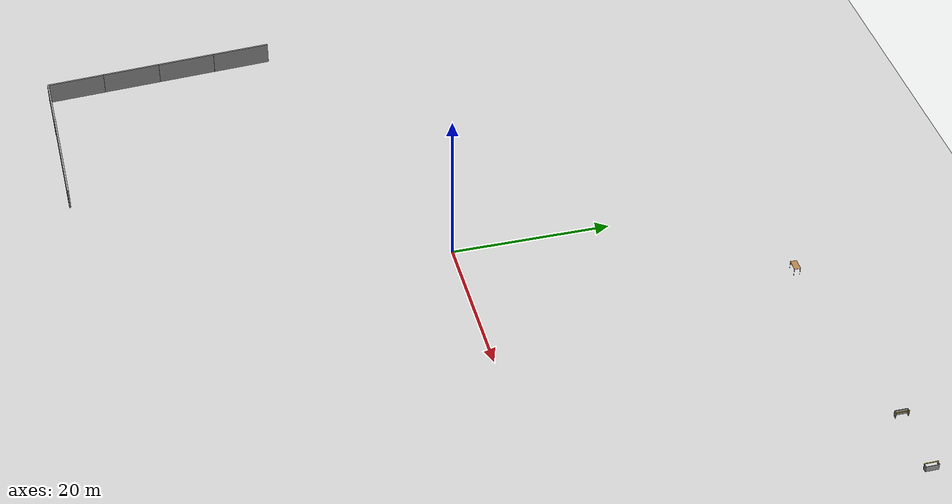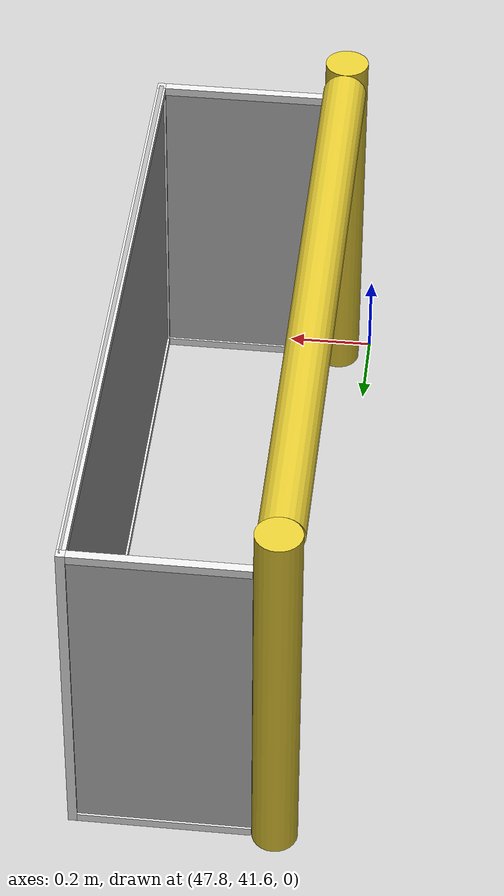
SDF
<sdf version="1.7">
 <world name="default">
  <light name="sun" type="directional">
   <pose>0 0 10 0 -0 0</pose>
   <diffuse>0.8 0.8 0.8 1</diffuse>
   <specular>0.2 0.2 0.2 1</specular>
   <attenuation>
    <range>1000</range>
    <constant>0.9</constant>
    <linear>0.01</linear>
    <quadratic>0.001</quadratic>
   </attenuation>
   <direction>-0.5 0.1 -0.9</direction>
   <spot><inner_angle>0</inner_angle><outer_angle>0</outer_angle><falloff>0</falloff></spot>
  </light>
  <gravity>0 0 -9.8</gravity>
  <magnetic_field>6e-06 2.3e-05 -4.2e-05</magnetic_field>
  <atmosphere type="adiabatic"/>
  <physics type="ode">
   <max_step_size>0.001</max_step_size>
   <real_time_factor>1</real_time_factor>
   <real_time_update_rate>1000</real_time_update_rate>
  </physics>
  <scene><ambient>0.4 0.4 0.4 1</ambient><background>0.7 0.7 0.7 1</background><shadows>1</shadows></scene>
  <spherical_coordinates>
   <surface_model>EARTH_WGS84</surface_model>
   <latitude_deg>0</latitude_deg>
   <longitude_deg>0</longitude_deg>
   <elevation>0</elevation>
   <heading_deg>0</heading_deg>
  </spherical_coordinates>
  <model name="grey_wall">
   <static>1</static>
   <link name="link">
    <pose>0 0 1.4 0 -0 0</pose>
    <collision name="collision"><geometry><box><size>7.5 0.2 2.8</size></box></geometry></collision>
    <visual name="visual">
     <cast_shadows>0</cast_shadows>
     <geometry><box><size>7.5 0.2 2.8</size></box></geometry>
     <material>
      <script>
       <uri>model://grey_wall/materials/scripts</uri>
       <uri>model://grey_wall/materials/textures</uri>
       <name>vrc/grey_wall</name>
      </script>
     </material>
    </visual>
   </link>
   <pose>-31.0615 -44.6284 0 0 -0 0</pose>
  </model>
  <model name="RoboCup 2014 SPL Goal">
   <static>1</static>
   <link name="left_post">
    <pose>0 0.8 0.45 0 -0 0</pose>
    <collision name="collision">
     <geometry><cylinder><radius>0.05</radius><length>0.9</length></cylinder></geometry>
    </collision>
    <visual name="visual">
     <geometry><cylinder><radius>0.05</radius><length>0.9</length></cylinder></geometry>
     <material>
      <script><uri>file://media/materials/scripts/gazebo.material</uri><name>Gazebo/ZincYellow</name></script>
     </material>
    </visual>
   </link>
   <link name="left_support_horiz_lower">
    <pose>0.24 0.8 0.01 0 -0 0</pose>
    <collision name="collision"><geometry><box><size>0.38 0.02 0.02</size></box></geometry></collision>
    <visual name="visual">
     <geometry><box><size>0.38 0.02 0.02</size></box></geometry>
     <material>
      <script><uri>file://media/materials/scripts/gazebo.material</uri><name>Gazebo/White</name></script>
     </material>
    </visual>
   </link>
   <link name="left_support_horiz_upper">
    <pose>0.24 0.8 0.79 0 -0 0</pose>
    <collision name="collision"><geometry><box><size>0.38 0.02 0.02</size></box></geometry></collision>
    <visual name="visual">
     <geometry><box><size>0.38 0.02 0.02</size></box></geometry>
     <material>
      <script><uri>file://media/materials/scripts/gazebo.material</uri><name>Gazebo/White</name></script>
     </material>
    </visual>
   </link>
   <link name="left_support_vertical">
    <pose>0.44 0.8 0.4 3.14159 1.57079 3.14159</pose>
    <collision name="collision"><geometry><box><size>0.8 0.02 0.02</size></box></geometry></collision>
    <visual name="visual">
     <geometry><box><size>0.8 0.02 0.02</size></box></geometry>
     <material>
      <script><uri>file://media/materials/scripts/gazebo.material</uri><name>Gazebo/White</name></script>
     </material>
    </visual>
   </link>
   <link name="right_support_horiz_lower">
    <pose>0.24 -0.8 0.01 0 -0 0</pose>
    <collision name="collision"><geometry><box><size>0.38 0.02 0.02</size></box></geometry></collision>
    <visual name="visual">
     <geometry><box><size>0.38 0.02 0.02</size></box></geometry>
     <material>
      <script><uri>file://media/materials/scripts/gazebo.material</uri><name>Gazebo/White</name></script>
     </material>
    </visual>
   </link>
   <link name="right_support_horiz_upper">
    <pose>0.24 -0.8 0.79 0 -0 0</pose>
    <collision name="collision"><geometry><box><size>0.38 0.02 0.02</size></box></geometry></collision>
    <visual name="visual">
     <geometry><box><size>0.38 0.02 0.02</size></box></geometry>
     <material>
      <script><uri>file://media/materials/scripts/gazebo.material</uri><name>Gazebo/White</name></script>
     </material>
    </visual>
   </link>
   <link name="right_support_vertical">
    <pose>0.44 -0.8 0.4 3.14159 1.57079 3.14159</pose>
    <collision name="collision"><geometry><box><size>0.8 0.02 0.02</size></box></geometry></collision>
    <visual name="visual">
     <geometry><box><size>0.8 0.02 0.02</size></box></geometry>
     <material>
      <script><uri>file://media/materials/scripts/gazebo.material</uri><name>Gazebo/White</name></script>
     </material>
    </visual>
   </link>
   <link name="center_support_horiz_lower">
    <pose>0.44 0 0.01 3.14159 1.57079 3.14159</pose>
    <collision name="collision"><geometry><box><size>0.02 1.58 0.02</size></box></geometry></collision>
    <visual name="visual">
     <geometry><box><size>0.02 1.58 0.02</size></box></geometry>
     <material>
      <script><uri>file://media/materials/scripts/gazebo.material</uri><name>Gazebo/White</name></script>
     </material>
    </visual>
   </link>
   <link name="center_support_horiz_upper">
    <pose>0.44 0 0.79 3.14159 1.57079 3.14159</pose>
    <collision name="collision"><geometry><box><size>0.02 1.58 0.02</size></box></geometry></collision>
    <visual name="visual">
     <geometry><box><size>0.02 1.58 0.02</size></box></geometry>
     <material>
      <script><uri>file://media/materials/scripts/gazebo.material</uri><name>Gazebo/White</name></script>
     </material>
    </visual>
   </link>
   <link name="right_post">
    <pose>0 -0.8 0.45 0 -0 0</pose>
    <collision name="collision">
     <geometry><cylinder><radius>0.05</radius><length>0.9</length></cylinder></geometry>
    </collision>
    <visual name="visual">
     <geometry><cylinder><radius>0.05</radius><length>0.9</length></cylinder></geometry>
     <material>
      <script><uri>file://media/materials/scripts/gazebo.material</uri><name>Gazebo/ZincYellow</name></script>
     </material>
    </visual>
   </link>
   <link name="crossbar">
    <pose>0 0 0.85 1.57 1.57 0</pose>
    <collision name="collision">
     <geometry><cylinder><radius>0.05</radius><length>1.5</length></cylinder></geometry>
    </collision>
    <visual name="visual">
     <geometry><cylinder><radius>0.05</radius><length>1.5</length></cylinder></geometry>
     <material>
      <script><uri>file://media/materials/scripts/gazebo.material</uri><name>Gazebo/ZincYellow</name></script>
     </material>
    </visual>
   </link>
   <link name="center_net">
    <pose>0.44 0 0.4 0 -0 0</pose>
    <collision name="collision"><geometry><box><size>0.01 1.6 0.8</size></box></geometry></collision>
    <visual name="visual">
     <geometry><box><size>0.01 1.6 0.8</size></box></geometry>
     <material>
      <script>
       <uri>model://robocup09_spl_field/materials/scripts/</uri>
       <uri>model://robocup09_spl_field/materials/textures/</uri>
       <name>RoboCup/Net</name>
      </script>
     </material>
    </visual>
   </link>
   <link name="left_net">
    <pose>0.24 0.8 0.4 0 -0 0</pose>
    <collision name="collision"><geometry><box><size>0.38 0.01 0.76</size></box></geometry></collision>
    <visual name="visual">
     <geometry><box><size>0.38 0.01 0.76</size></box></geometry>
     <material>
      <script>
       <uri>model://robocup09_spl_field/materials/scripts/</uri>
       <uri>model://robocup09_spl_field/materials/textures/</uri>
       <name>RoboCup/Net</name>
      </script>
     </material>
    </visual>
   </link>
   <link name="right_net">
    <pose>0.24 -0.8 0.4 0 -0 0</pose>
    <collision name="collision"><geometry><box><size>0.38 0.01 0.76</size></box></geometry></collision>
    <visual name="visual">
     <geometry><box><size>0.38 0.01 0.76</size></box></geometry>
     <material>
      <script>
       <uri>model://robocup09_spl_field/materials/scripts/</uri>
       <uri>model://robocup09_spl_field/materials/textures/</uri>
       <name>RoboCup/Net</name>
      </script>
     </material>
    </visual>
   </link>
   <pose>47.8746 42.4463 0 0 -0 0</pose>
  </model>
  <model name="RoboCup 2014 SPL Goal_clone">
   <static>1</static>
   <link name="left_post">
    <pose>0 0.8 0.45 0 -0 0</pose>
    <collision name="collision">
     <geometry><cylinder><radius>0.05</radius><length>0.9</length></cylinder></geometry>
    </collision>
    <visual name="visual">
     <geometry><cylinder><radius>0.05</radius><length>0.9</length></cylinder></geometry>
     <material>
      <script><uri>file://media/materials/scripts/gazebo.material</uri><name>Gazebo/ZincYellow</name></script>
     </material>
    </visual>
   </link>
   <link name="left_support_horiz_lower">
    <pose>0.24 0.8 0.01 0 -0 0</pose>
    <collision name="collision"><geometry><box><size>0.38 0.02 0.02</size></box></geometry></collision>
    <visual name="visual">
     <geometry><box><size>0.38 0.02 0.02</size></box></geometry>
     <material>
      <script><uri>file://media/materials/scripts/gazebo.material</uri><name>Gazebo/White</name></script>
     </material>
    </visual>
   </link>
   <link name="left_support_horiz_upper">
    <pose>0.24 0.8 0.79 0 -0 0</pose>
    <collision name="collision"><geometry><box><size>0.38 0.02 0.02</size></box></geometry></collision>
    <visual name="visual">
     <geometry><box><size>0.38 0.02 0.02</size></box></geometry>
     <material>
      <script><uri>file://media/materials/scripts/gazebo.material</uri><name>Gazebo/White</name></script>
     </material>
    </visual>
   </link>
   <link name="left_support_vertical">
    <pose>0.44 0.8 0.4 3.14159 1.57079 3.14159</pose>
    <collision name="collision"><geometry><box><size>0.8 0.02 0.02</size></box></geometry></collision>
    <visual name="visual">
     <geometry><box><size>0.8 0.02 0.02</size></box></geometry>
     <material>
      <script><uri>file://media/materials/scripts/gazebo.material</uri><name>Gazebo/White</name></script>
     </material>
    </visual>
   </link>
   <link name="right_support_horiz_lower">
    <pose>0.24 -0.8 0.01 0 -0 0</pose>
    <collision name="collision"><geometry><box><size>0.38 0.02 0.02</size></box></geometry></collision>
    <visual name="visual">
     <geometry><box><size>0.38 0.02 0.02</size></box></geometry>
     <material>
      <script><uri>file://media/materials/scripts/gazebo.material</uri><name>Gazebo/White</name></script>
     </material>
    </visual>
   </link>
   <link name="right_support_horiz_upper">
    <pose>0.24 -0.8 0.79 0 -0 0</pose>
    <collision name="collision"><geometry><box><size>0.38 0.02 0.02</size></box></geometry></collision>
    <visual name="visual">
     <geometry><box><size>0.38 0.02 0.02</size></box></geometry>
     <material>
      <script><uri>file://media/materials/scripts/gazebo.material</uri><name>Gazebo/White</name></script>
     </material>
    </visual>
   </link>
   <link name="right_support_vertical">
    <pose>0.44 -0.8 0.4 3.14159 1.57079 3.14159</pose>
    <collision name="collision"><geometry><box><size>0.8 0.02 0.02</size></box></geometry></collision>
    <visual name="visual">
     <geometry><box><size>0.8 0.02 0.02</size></box></geometry>
     <material>
      <script><uri>file://media/materials/scripts/gazebo.material</uri><name>Gazebo/White</name></script>
     </material>
    </visual>
   </link>
   <link name="center_support_horiz_lower">
    <pose>0.44 0 0.01 3.14159 1.57079 3.14159</pose>
    <collision name="collision"><geometry><box><size>0.02 1.58 0.02</size></box></geometry></collision>
    <visual name="visual">
     <geometry><box><size>0.02 1.58 0.02</size></box></geometry>
     <material>
      <script><uri>file://media/materials/scripts/gazebo.material</uri><name>Gazebo/White</name></script>
     </material>
    </visual>
   </link>
   <link name="center_support_horiz_upper">
    <pose>0.44 0 0.79 3.14159 1.57079 3.14159</pose>
    <collision name="collision"><geometry><box><size>0.02 1.58 0.02</size></box></geometry></collision>
    <visual name="visual">
     <geometry><box><size>0.02 1.58 0.02</size></box></geometry>
     <material>
      <script><uri>file://media/materials/scripts/gazebo.material</uri><name>Gazebo/White</name></script>
     </material>
    </visual>
   </link>
   <link name="right_post">
    <pose>0 -0.8 0.45 0 -0 0</pose>
    <collision name="collision">
     <geometry><cylinder><radius>0.05</radius><length>0.9</length></cylinder></geometry>
    </collision>
    <visual name="visual">
     <geometry><cylinder><radius>0.05</radius><length>0.9</length></cylinder></geometry>
     <material>
      <script><uri>file://media/materials/scripts/gazebo.material</uri><name>Gazebo/ZincYellow</name></script>
     </material>
    </visual>
   </link>
   <link name="crossbar">
    <pose>0 0 0.85 1.57 1.57 0</pose>
    <collision name="collision">
     <geometry><cylinder><radius>0.05</radius><length>1.5</length></cylinder></geometry>
    </collision>
    <visual name="visual">
     <geometry><cylinder><radius>0.05</radius><length>1.5</length></cylinder></geometry>
     <material>
      <script><uri>file://media/materials/scripts/gazebo.material</uri><name>Gazebo/ZincYellow</name></script>
     </material>
    </visual>
   </link>
   <link name="center_net">
    <pose>0.44 0 0.4 0 -0 0</pose>
    <collision name="collision"><geometry><box><size>0.01 1.6 0.8</size></box></geometry></collision>
    <visual name="visual">
     <geometry><box><size>0.01 1.6 0.8</size></box></geometry>
     <material>
      <script>
       <uri>model://robocup09_spl_field/materials/scripts/</uri>
       <uri>model://robocup09_spl_field/materials/textures/</uri>
       <name>RoboCup/Net</name>
      </script>
     </material>
    </visual>
   </link>
   <link name="left_net">
    <pose>0.24 0.8 0.4 0 -0 0</pose>
    <collision name="collision"><geometry><box><size>0.38 0.01 0.76</size></box></geometry></collision>
    <visual name="visual">
     <geometry><box><size>0.38 0.01 0.76</size></box></geometry>
     <material>
      <script>
       <uri>model://robocup09_spl_field/materials/scripts/</uri>
       <uri>model://robocup09_spl_field/materials/textures/</uri>
       <name>RoboCup/Net</name>
      </script>
     </material>
    </visual>
   </link>
   <link name="right_net">
    <pose>0.24 -0.8 0.4 0 -0 0</pose>
    <collision name="collision"><geometry><box><size>0.38 0.01 0.76</size></box></geometry></collision>
    <visual name="visual">
     <geometry><box><size>0.38 0.01 0.76</size></box></geometry>
     <material>
      <script>
       <uri>model://robocup09_spl_field/materials/scripts/</uri>
       <uri>model://robocup09_spl_field/materials/textures/</uri>
       <name>RoboCup/Net</name>
      </script>
     </material>
    </visual>
   </link>
   <pose>39.8076 42.4503 0 0 0 -3.13863</pose>
  </model>
  <model name="table">
   <static>1</static>
   <link name="link">
    <collision name="surface">
     <pose>0 0 1 0 -0 0</pose>
     <geometry><box><size>1.5 0.8 0.03</size></box></geometry>
     <surface><friction><ode><mu>0.6</mu><mu2>0.6</mu2></ode></friction></surface>
    </collision>
    <visual name="visual1">
     <pose>0 0 1 0 -0 0</pose>
     <geometry><box><size>1.5 0.8 0.03</size></box></geometry>
     <material>
      <script><uri>file://media/materials/scripts/gazebo.material</uri><name>Gazebo/Wood</name></script>
     </material>
    </visual>
    <collision name="front_left_leg">
     <pose>0.68 0.38 0.5 0 -0 0</pose>
     <geometry><cylinder><radius>0.02</radius><length>1</length></cylinder></geometry>
    </collision>
    <visual name="front_left_leg">
     <pose>0.68 0.38 0.5 0 -0 0</pose>
     <geometry><cylinder><radius>0.02</radius><length>1</length></cylinder></geometry>
     <material>
      <script><uri>file://media/materials/scripts/gazebo.material</uri><name>Gazebo/Grey</name></script>
     </material>
    </visual>
    <collision name="front_right_leg">
     <pose>0.68 -0.38 0.5 0 -0 0</pose>
     <geometry><cylinder><radius>0.02</radius><length>1</length></cylinder></geometry>
    </collision>
    <visual name="front_right_leg">
     <pose>0.68 -0.38 0.5 0 -0 0</pose>
     <geometry><cylinder><radius>0.02</radius><length>1</length></cylinder></geometry>
     <material>
      <script><uri>file://media/materials/scripts/gazebo.material</uri><name>Gazebo/Grey</name></script>
     </material>
    </visual>
    <collision name="back_right_leg">
     <pose>-0.68 -0.38 0.5 0 -0 0</pose>
     <geometry><cylinder><radius>0.02</radius><length>1</length></cylinder></geometry>
    </collision>
    <visual name="back_right_leg">
     <pose>-0.68 -0.38 0.5 0 -0 0</pose>
     <geometry><cylinder><radius>0.02</radius><length>1</length></cylinder></geometry>
     <material>
      <script><uri>file://media/materials/scripts/gazebo.material</uri><name>Gazebo/Grey</name></script>
     </material>
    </visual>
    <collision name="back_left_leg">
     <pose>-0.68 0.38 0.5 0 -0 0</pose>
     <geometry><cylinder><radius>0.02</radius><length>1</length></cylinder></geometry>
    </collision>
    <visual name="back_left_leg">
     <pose>-0.68 0.38 0.5 0 -0 0</pose>
     <geometry><cylinder><radius>0.02</radius><length>1</length></cylinder></geometry>
     <material>
      <script><uri>file://media/materials/scripts/gazebo.material</uri><name>Gazebo/Grey</name></script>
     </material>
    </visual>
   </link>
   <pose>13.4826 39.5162 0 0 -0 0</pose>
  </model>
  <model name="grey_wall_clone">
   <static>1</static>
   <link name="link">
    <pose>0 0 1.4 0 -0 0</pose>
    <collision name="collision"><geometry><box><size>7.5 0.2 2.8</size></box></geometry></collision>
    <visual name="visual">
     <cast_shadows>0</cast_shadows>
     <geometry><box><size>7.5 0.2 2.8</size></box></geometry>
     <material>
      <script>
       <uri>model://grey_wall/materials/scripts</uri>
       <uri>model://grey_wall/materials/textures</uri>
       <name>vrc/grey_wall</name>
      </script>
     </material>
    </visual>
   </link>
   <pose>-23.5462 -44.6257 0 0 -0 0</pose>
  </model>
  <model name="grey_wall_clone_0">
   <static>1</static>
   <link name="link">
    <pose>0 0 1.4 0 -0 0</pose>
    <collision name="collision"><geometry><box><size>7.5 0.2 2.8</size></box></geometry></collision>
    <visual name="visual">
     <cast_shadows>0</cast_shadows>
     <geometry><box><size>7.5 0.2 2.8</size></box></geometry>
     <material>
      <script>
       <uri>model://grey_wall/materials/scripts</uri>
       <uri>model://grey_wall/materials/textures</uri>
       <name>vrc/grey_wall</name>
      </script>
     </material>
    </visual>
   </link>
   <pose>-38.5568 -44.6596 0 0 -0 0</pose>
  </model>
  <model name="grey_wall_clone_1">
   <static>1</static>
   <link name="link">
    <pose>0 0 1.4 0 -0 0</pose>
    <collision name="collision"><geometry><box><size>7.5 0.2 2.8</size></box></geometry></collision>
    <visual name="visual">
     <cast_shadows>0</cast_shadows>
     <geometry><box><size>7.5 0.2 2.8</size></box></geometry>
     <material>
      <script>
       <uri>model://grey_wall/materials/scripts</uri>
       <uri>model://grey_wall/materials/textures</uri>
       <name>vrc/grey_wall</name>
      </script>
     </material>
    </visual>
   </link>
   <pose>-42.6513 -41.0316 0 0 0 -1.50136</pose>
  </model>
  <model name="grey_wall_clone_1_clone">
   <static>1</static>
   <link name="link">
    <pose>0 0 1.4 0 -0 0</pose>
    <collision name="collision"><geometry><box><size>7.5 0.2 2.8</size></box></geometry></collision>
    <visual name="visual">
     <cast_shadows>0</cast_shadows>
     <geometry><box><size>7.5 0.2 2.8</size></box></geometry>
     <material>
      <script>
       <uri>model://grey_wall/materials/scripts</uri>
       <uri>model://grey_wall/materials/textures</uri>
       <name>vrc/grey_wall</name>
      </script>
     </material>
    </visual>
   </link>
   <pose>-43.1862 -33.5493 0 0 0 -1.50136</pose>
  </model>
  <model name="grey_wall_clone_1_clone_clone">
   <static>1</static>
   <link name="link">
    <pose>0 0 1.4 0 -0 0</pose>
    <collision name="collision"><geometry><box><size>7.5 0.2 2.8</size></box></geometry></collision>
    <visual name="visual">
     <cast_shadows>0</cast_shadows>
     <geometry><box><size>7.5 0.2 2.8</size></box></geometry>
     <material>
      <script>
       <uri>model://grey_wall/materials/scripts</uri>
       <uri>model://grey_wall/materials/textures</uri>
       <name>vrc/grey_wall</name>
      </script>
     </material>
    </visual>
   </link>
   <pose>-43.7072 -26.0656 0 0 0 -1.50136</pose>
  </model>
  <model name="grey_wall_clone_1_clone_clone_clone">
   <static>1</static>
   <link name="link">
    <pose>0 0 1.4 0 -0 0</pose>
    <collision name="collision"><geometry><box><size>7.5 0.2 2.8</size></box></geometry></collision>
    <visual name="visual">
     <cast_shadows>0</cast_shadows>
     <geometry><box><size>7.5 0.2 2.8</size></box></geometry>
     <material>
      <script>
       <uri>model://grey_wall/materials/scripts</uri>
       <uri>model://grey_wall/materials/textures</uri>
       <name>vrc/grey_wall</name>
      </script>
     </material>
    </visual>
   </link>
   <pose>-44.2246 -18.586 0 0 0 -1.50136</pose>
  </model>
  <model name="ground_plane">
   <static>1</static>
   <link name="link">
    <collision name="collision">
     <geometry><plane><normal>0 0 1</normal><size>100 100</size></plane></geometry>
     <surface><friction><ode><mu>100</mu><mu2>50</mu2></ode></friction></surface>
    </collision>
    <visual name="visual">
     <cast_shadows>0</cast_shadows>
     <geometry><plane><normal>0 0 1</normal><size>100 100</size></plane></geometry>
     <material>
      <script><uri>file://media/materials/scripts/gazebo.material</uri><name>Gazebo/Grey</name></script>
     </material>
    </visual>
   </link>
   <pose>0.408001 -0.283487 0 0 -0 0</pose>
  </model>
 </world>
</sdf>
